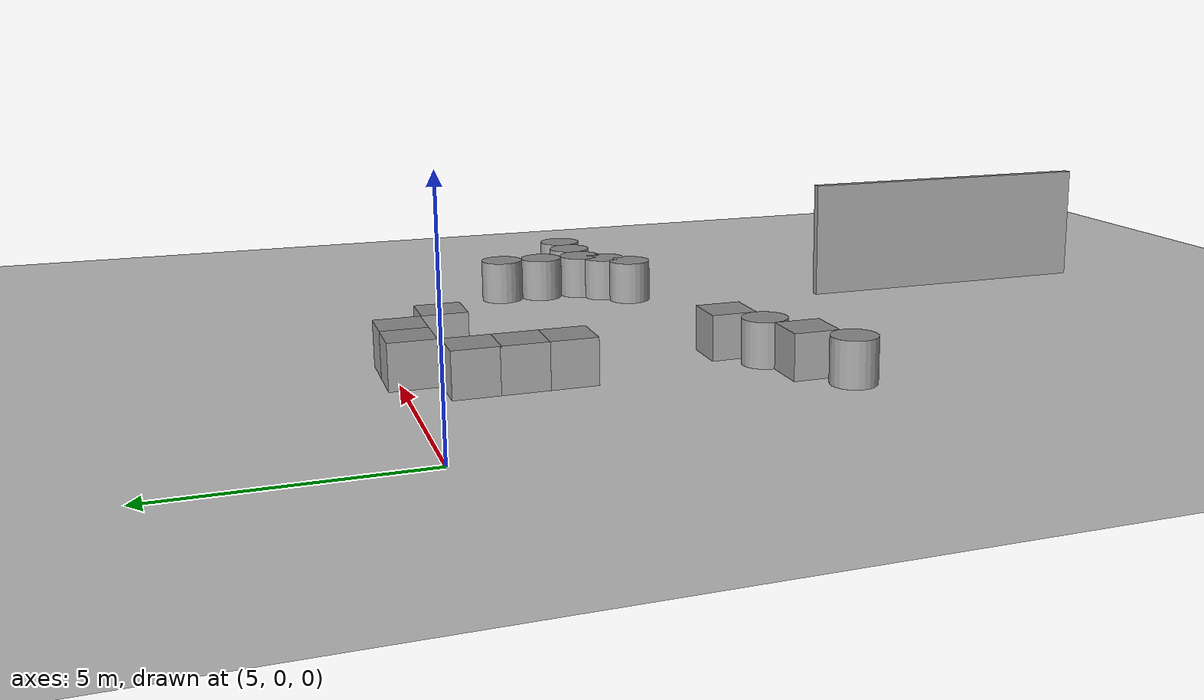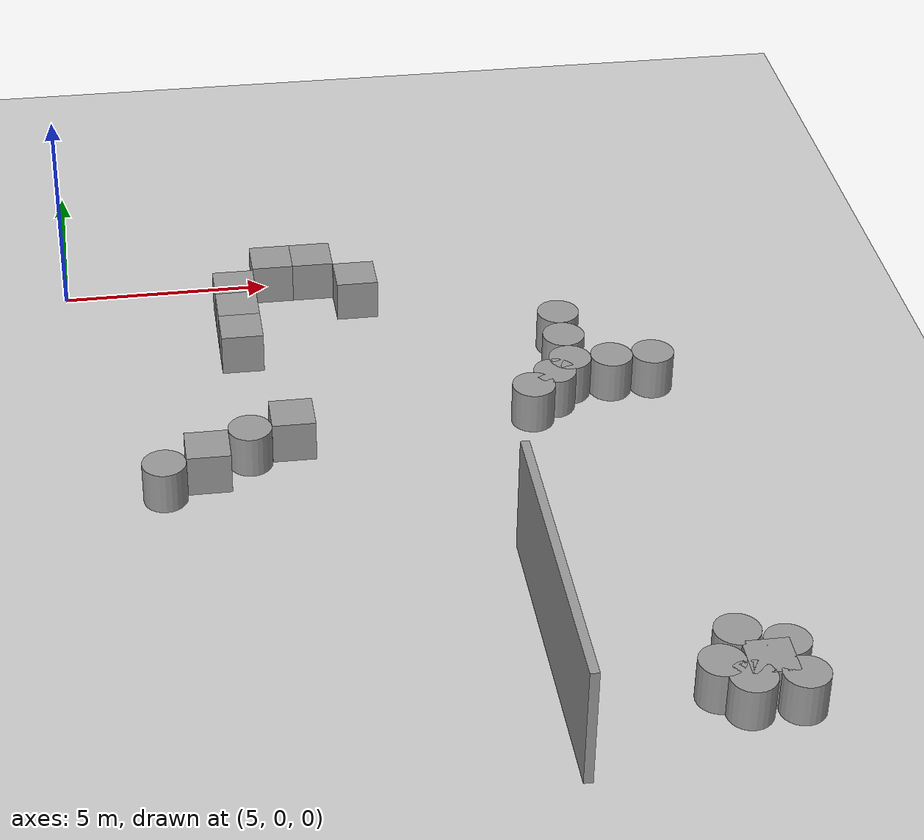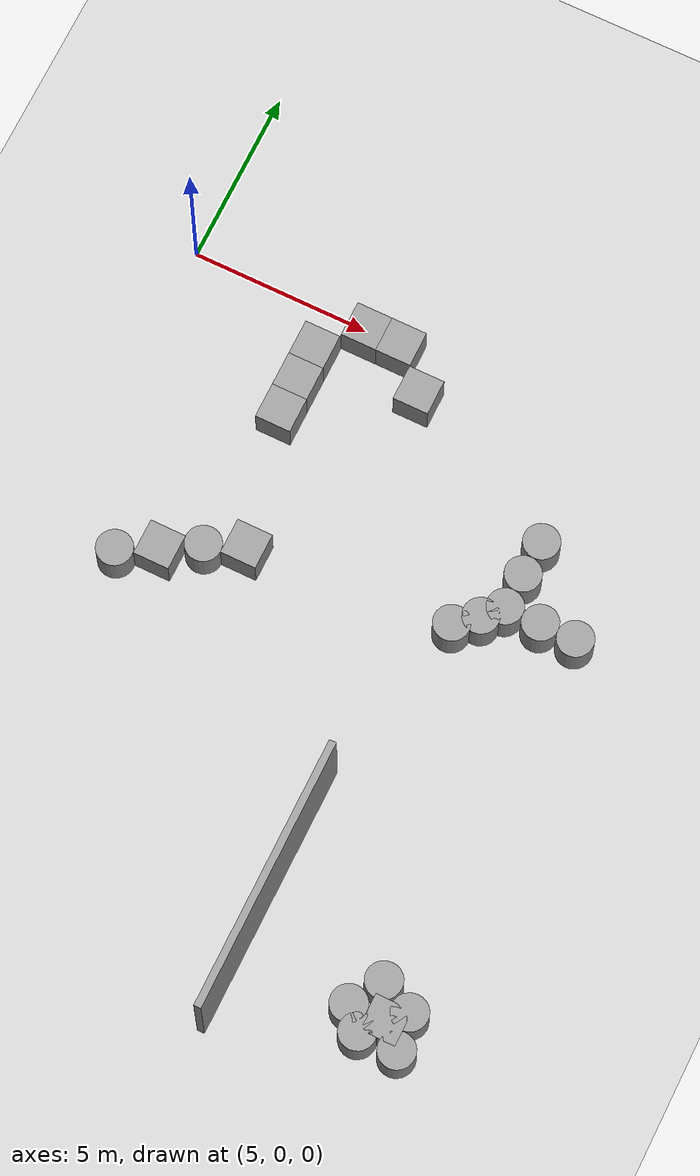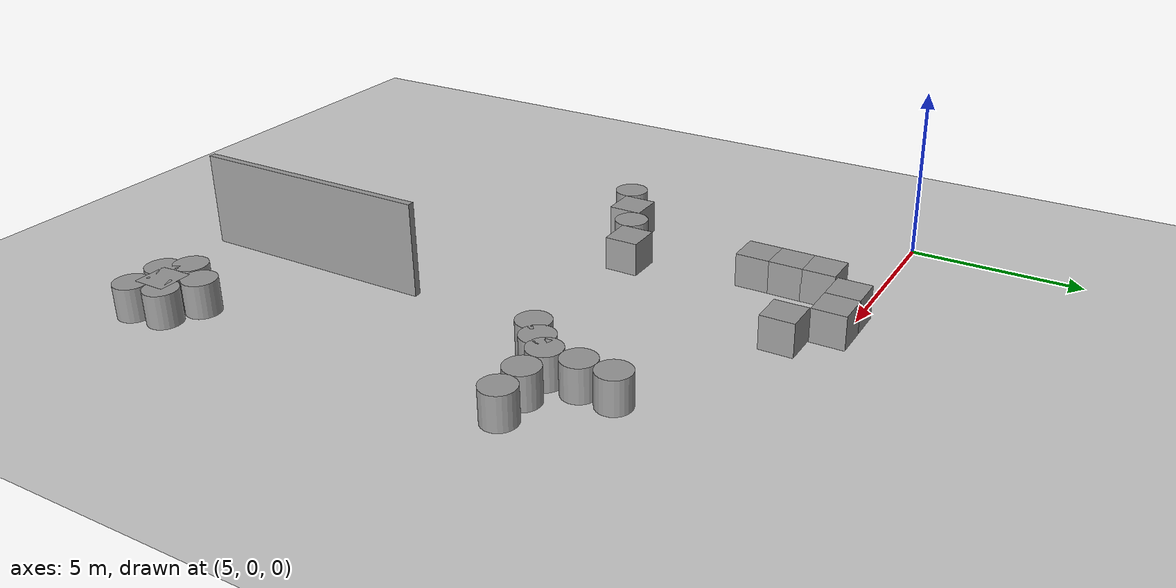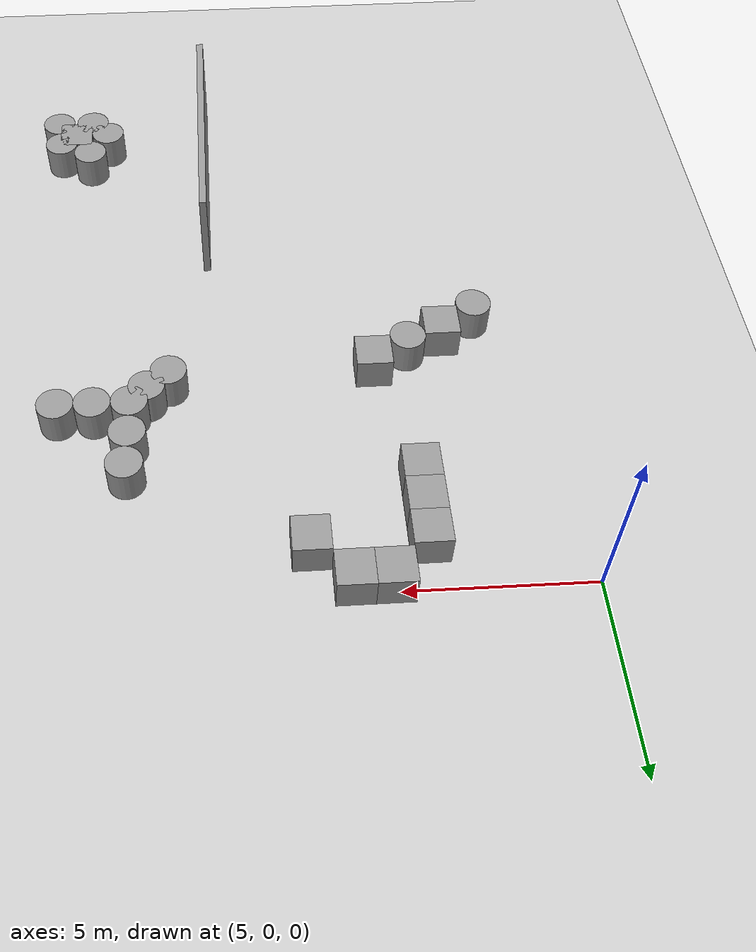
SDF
<sdf version="1.6">
 <world name="default">
  <model name="ground_plane">
   <static>1</static>
   <link name="link">
    <collision name="collision">
     <geometry><plane><normal>0 0 1</normal><size>100 100</size></plane></geometry>
     <surface><friction><ode><mu>100</mu><mu2>50</mu2></ode></friction></surface>
    </collision>
    <visual name="visual">
     <cast_shadows>0</cast_shadows>
     <geometry><plane><normal>0 0 1</normal><size>100 100</size></plane></geometry>
     <material>
      <script><uri>file://media/materials/scripts/gazebo.material</uri><name>Gazebo/Grey</name></script>
     </material>
    </visual>
   </link>
  </model>
  <model name="grey_wall_5_clone">
   <static>1</static>
   <link name="link">
    <pose>0 0 1.4 0 -0 0</pose>
    <collision name="collision"><geometry><box><size>7.5 0.2 2.8</size></box></geometry></collision>
    <visual name="visual">
     <cast_shadows>0</cast_shadows>
     <geometry><box><size>7.5 0.2 2.8</size></box></geometry>
     <material>
      <script>
       <uri>model://grey_wall/materials/scripts</uri>
       <uri>model://grey_wall/materials/textures</uri>
       <name>vrc/grey_wall</name>
      </script>
     </material>
    </visual>
   </link>
   <pose>14.5686 -15.0042 0 0 -0 1.5708</pose>
  </model>
  <model name="machine6">
   <link name="link_32">
    <pose>-0.5 -0.233197 0 0 -0 0</pose>
    <inertial>
     <mass>1</mass>
     <inertia>
      <ixx>0.166667</ixx>
      <ixy>0</ixy>
      <ixz>0</ixz>
      <iyy>0.166667</iyy>
      <iyz>0</iyz>
      <izz>0.166667</izz>
     </inertia>
    </inertial>
    <visual name="visual">
     <geometry><box><size>1 1 1</size></box></geometry>
     <material>
      <lighting>1</lighting>
      <script><uri>file://media/materials/scripts/gazebo.material</uri><name>Gazebo/Grey</name></script>
      <ambient>0.3 0.3 0.3 1</ambient>
      <diffuse>0.7 0.7 0.7 1</diffuse>
      <specular>0.01 0.01 0.01 1</specular>
      <emissive>0 0 0 1</emissive>
     </material>
    </visual>
    <collision name="collision">
     <geometry><box><size>1 1 1</size></box></geometry>
     <surface>
      <friction>
       <ode><mu>1</mu><mu2>1</mu2><fdir1>0 0 0</fdir1><slip1>0</slip1><slip2>0</slip2></ode>
       <torsional>
        <coefficient>1</coefficient>
        <patch_radius>0</patch_radius>
        <surface_radius>0</surface_radius>
        <use_patch_radius>1</use_patch_radius>
        <ode><slip>0</slip></ode>
       </torsional>
      </friction>
      <bounce><restitution_coefficient>0</restitution_coefficient><threshold>1e+06</threshold></bounce>
      <contact>
       <collide_without_contact>0</collide_without_contact>
       <collide_without_contact_bitmask>1</collide_without_contact_bitmask>
       <collide_bitmask>1</collide_bitmask>
       <ode>
        <soft_cfm>0</soft_cfm>
        <soft_erp>0.2</soft_erp>
        <kp>1e+13</kp>
        <kd>1</kd>
        <max_vel>0.01</max_vel>
        <min_depth>0</min_depth>
       </ode>
       <bullet>
        <split_impulse>1</split_impulse>
        <split_impulse_penetration_threshold>-0.01</split_impulse_penetration_threshold>
        <soft_cfm>0</soft_cfm>
        <soft_erp>0.2</soft_erp>
        <kp>1e+13</kp>
        <kd>1</kd>
       </bullet>
      </contact>
     </surface>
    </collision>
   </link>
   <link name="link_33">
    <pose>0.5 0.283618 0 0 -0 0</pose>
    <inertial>
     <mass>1</mass>
     <inertia><ixx>0.145833</ixx><ixy>0</ixy><ixz>0</ixz><iyy>0.145833</iyy><iyz>0</iyz><izz>0.125</izz></inertia>
    </inertial>
    <visual name="visual">
     <geometry><cylinder><radius>0.5</radius><length>1</length></cylinder></geometry>
     <material>
      <lighting>1</lighting>
      <script><uri>file://media/materials/scripts/gazebo.material</uri><name>Gazebo/Grey</name></script>
      <ambient>0.3 0.3 0.3 1</ambient>
      <diffuse>0.7 0.7 0.7 1</diffuse>
      <specular>0.01 0.01 0.01 1</specular>
      <emissive>0 0 0 1</emissive>
     </material>
    </visual>
    <collision name="collision">
     <geometry><cylinder><radius>0.5</radius><length>1</length></cylinder></geometry>
     <surface>
      <friction>
       <ode><mu>1</mu><mu2>1</mu2><fdir1>0 0 0</fdir1><slip1>0</slip1><slip2>0</slip2></ode>
       <torsional>
        <coefficient>1</coefficient>
        <patch_radius>0</patch_radius>
        <surface_radius>0</surface_radius>
        <use_patch_radius>1</use_patch_radius>
        <ode><slip>0</slip></ode>
       </torsional>
      </friction>
      <bounce><restitution_coefficient>0</restitution_coefficient><threshold>1e+06</threshold></bounce>
      <contact>
       <collide_without_contact>0</collide_without_contact>
       <collide_without_contact_bitmask>1</collide_without_contact_bitmask>
       <collide_bitmask>1</collide_bitmask>
       <ode>
        <soft_cfm>0</soft_cfm>
        <soft_erp>0.2</soft_erp>
        <kp>1e+13</kp>
        <kd>1</kd>
        <max_vel>0.01</max_vel>
        <min_depth>0</min_depth>
       </ode>
       <bullet>
        <split_impulse>1</split_impulse>
        <split_impulse_penetration_threshold>-0.01</split_impulse_penetration_threshold>
        <soft_cfm>0</soft_cfm>
        <soft_erp>0.2</soft_erp>
        <kp>1e+13</kp>
        <kd>1</kd>
       </bullet>
      </contact>
     </surface>
    </collision>
   </link>
   <link name="link_34">
    <pose>-1.5 -0.817224 0 0 -0 0</pose>
    <inertial>
     <mass>1</mass>
     <inertia><ixx>0.145833</ixx><ixy>0</ixy><ixz>0</ixz><iyy>0.145833</iyy><iyz>0</iyz><izz>0.125</izz></inertia>
    </inertial>
    <visual name="visual">
     <geometry><cylinder><radius>0.5</radius><length>1</length></cylinder></geometry>
     <material>
      <lighting>1</lighting>
      <script><uri>file://media/materials/scripts/gazebo.material</uri><name>Gazebo/Grey</name></script>
      <ambient>0.3 0.3 0.3 1</ambient>
      <diffuse>0.7 0.7 0.7 1</diffuse>
      <specular>0.01 0.01 0.01 1</specular>
      <emissive>0 0 0 1</emissive>
     </material>
    </visual>
    <collision name="collision">
     <geometry><cylinder><radius>0.5</radius><length>1</length></cylinder></geometry>
     <surface>
      <friction>
       <ode><mu>1</mu><mu2>1</mu2><fdir1>0 0 0</fdir1><slip1>0</slip1><slip2>0</slip2></ode>
       <torsional>
        <coefficient>1</coefficient>
        <patch_radius>0</patch_radius>
        <surface_radius>0</surface_radius>
        <use_patch_radius>1</use_patch_radius>
        <ode><slip>0</slip></ode>
       </torsional>
      </friction>
      <bounce><restitution_coefficient>0</restitution_coefficient><threshold>1e+06</threshold></bounce>
      <contact>
       <collide_without_contact>0</collide_without_contact>
       <collide_without_contact_bitmask>1</collide_without_contact_bitmask>
       <collide_bitmask>1</collide_bitmask>
       <ode>
        <soft_cfm>0</soft_cfm>
        <soft_erp>0.2</soft_erp>
        <kp>1e+13</kp>
        <kd>1</kd>
        <max_vel>0.01</max_vel>
        <min_depth>0</min_depth>
       </ode>
       <bullet>
        <split_impulse>1</split_impulse>
        <split_impulse_penetration_threshold>-0.01</split_impulse_penetration_threshold>
        <soft_cfm>0</soft_cfm>
        <soft_erp>0.2</soft_erp>
        <kp>1e+13</kp>
        <kd>1</kd>
       </bullet>
      </contact>
     </surface>
    </collision>
   </link>
   <link name="link_35">
    <pose>1.5 0.766803 0 0 -0 0</pose>
    <inertial>
     <mass>1</mass>
     <inertia>
      <ixx>0.166667</ixx>
      <ixy>0</ixy>
      <ixz>0</ixz>
      <iyy>0.166667</iyy>
      <iyz>0</iyz>
      <izz>0.166667</izz>
     </inertia>
    </inertial>
    <visual name="visual">
     <geometry><box><size>1 1 1</size></box></geometry>
     <material>
      <lighting>1</lighting>
      <script><uri>file://media/materials/scripts/gazebo.material</uri><name>Gazebo/Grey</name></script>
      <ambient>0.3 0.3 0.3 1</ambient>
      <diffuse>0.7 0.7 0.7 1</diffuse>
      <specular>0.01 0.01 0.01 1</specular>
      <emissive>0 0 0 1</emissive>
     </material>
    </visual>
    <collision name="collision">
     <geometry><box><size>1 1 1</size></box></geometry>
     <surface>
      <friction>
       <ode><mu>1</mu><mu2>1</mu2><fdir1>0 0 0</fdir1><slip1>0</slip1><slip2>0</slip2></ode>
       <torsional>
        <coefficient>1</coefficient>
        <patch_radius>0</patch_radius>
        <surface_radius>0</surface_radius>
        <use_patch_radius>1</use_patch_radius>
        <ode><slip>0</slip></ode>
       </torsional>
      </friction>
      <bounce><restitution_coefficient>0</restitution_coefficient><threshold>1e+06</threshold></bounce>
      <contact>
       <collide_without_contact>0</collide_without_contact>
       <collide_without_contact_bitmask>1</collide_without_contact_bitmask>
       <collide_bitmask>1</collide_bitmask>
       <ode>
        <soft_cfm>0</soft_cfm>
        <soft_erp>0.2</soft_erp>
        <kp>1e+13</kp>
        <kd>1</kd>
        <max_vel>0.01</max_vel>
        <min_depth>0</min_depth>
       </ode>
       <bullet>
        <split_impulse>1</split_impulse>
        <split_impulse_penetration_threshold>-0.01</split_impulse_penetration_threshold>
        <soft_cfm>0</soft_cfm>
        <soft_erp>0.2</soft_erp>
        <kp>1e+13</kp>
        <kd>1</kd>
       </bullet>
      </contact>
     </surface>
    </collision>
   </link>
   <static>0</static>
   <pose>8.5 -7.7668 0.5 0 -0 0</pose>
  </model>
  <model name="machine2_clone_0_clone">
   <link name="link_6">
    <pose>0.153167 -0.028269 0 0 -0 0</pose>
    <inertial>
     <mass>1</mass>
     <inertia>
      <ixx>0.166667</ixx>
      <ixy>0</ixy>
      <ixz>0</ixz>
      <iyy>0.166667</iyy>
      <iyz>0</iyz>
      <izz>0.166667</izz>
     </inertia>
    </inertial>
    <visual name="visual">
     <geometry><box><size>1 1 1</size></box></geometry>
     <material>
      <lighting>1</lighting>
      <script><uri>file://media/materials/scripts/gazebo.material</uri><name>Gazebo/Grey</name></script>
      <ambient>0.3 0.3 0.3 1</ambient>
      <diffuse>0.7 0.7 0.7 1</diffuse>
      <specular>0.01 0.01 0.01 1</specular>
      <emissive>0 0 0 1</emissive>
     </material>
    </visual>
    <collision name="collision">
     <geometry><box><size>1 1 1</size></box></geometry>
     <surface>
      <friction>
       <ode><mu>1</mu><mu2>1</mu2><fdir1>0 0 0</fdir1><slip1>0</slip1><slip2>0</slip2></ode>
       <torsional>
        <coefficient>1</coefficient>
        <patch_radius>0</patch_radius>
        <surface_radius>0</surface_radius>
        <use_patch_radius>1</use_patch_radius>
        <ode><slip>0</slip></ode>
       </torsional>
      </friction>
      <bounce><restitution_coefficient>0</restitution_coefficient><threshold>1e+06</threshold></bounce>
      <contact>
       <collide_without_contact>0</collide_without_contact>
       <collide_without_contact_bitmask>1</collide_without_contact_bitmask>
       <collide_bitmask>1</collide_bitmask>
       <ode>
        <soft_cfm>0</soft_cfm>
        <soft_erp>0.2</soft_erp>
        <kp>1e+13</kp>
        <kd>1</kd>
        <max_vel>0.01</max_vel>
        <min_depth>0</min_depth>
       </ode>
       <bullet>
        <split_impulse>1</split_impulse>
        <split_impulse_penetration_threshold>-0.01</split_impulse_penetration_threshold>
        <soft_cfm>0</soft_cfm>
        <soft_erp>0.2</soft_erp>
        <kp>1e+13</kp>
        <kd>1</kd>
       </bullet>
      </contact>
     </surface>
    </collision>
   </link>
   <link name="link_10">
    <pose>0.61205 0.404825 0 0 -0 0</pose>
    <inertial>
     <mass>1</mass>
     <inertia><ixx>0.145833</ixx><ixy>0</ixy><ixz>0</ixz><iyy>0.145833</iyy><iyz>0</iyz><izz>0.125</izz></inertia>
    </inertial>
    <visual name="visual">
     <geometry><cylinder><radius>0.5</radius><length>1</length></cylinder></geometry>
     <material>
      <lighting>1</lighting>
      <script><uri>file://media/materials/scripts/gazebo.material</uri><name>Gazebo/Grey</name></script>
      <ambient>0.3 0.3 0.3 1</ambient>
      <diffuse>0.7 0.7 0.7 1</diffuse>
      <specular>0.01 0.01 0.01 1</specular>
      <emissive>0 0 0 1</emissive>
     </material>
    </visual>
    <collision name="collision">
     <geometry><cylinder><radius>0.5</radius><length>1</length></cylinder></geometry>
     <surface>
      <friction>
       <ode><mu>1</mu><mu2>1</mu2><fdir1>0 0 0</fdir1><slip1>0</slip1><slip2>0</slip2></ode>
       <torsional>
        <coefficient>1</coefficient>
        <patch_radius>0</patch_radius>
        <surface_radius>0</surface_radius>
        <use_patch_radius>1</use_patch_radius>
        <ode><slip>0</slip></ode>
       </torsional>
      </friction>
      <bounce><restitution_coefficient>0</restitution_coefficient><threshold>1e+06</threshold></bounce>
      <contact>
       <collide_without_contact>0</collide_without_contact>
       <collide_without_contact_bitmask>1</collide_without_contact_bitmask>
       <collide_bitmask>1</collide_bitmask>
       <ode>
        <soft_cfm>0</soft_cfm>
        <soft_erp>0.2</soft_erp>
        <kp>1e+13</kp>
        <kd>1</kd>
        <max_vel>0.01</max_vel>
        <min_depth>0</min_depth>
       </ode>
       <bullet>
        <split_impulse>1</split_impulse>
        <split_impulse_penetration_threshold>-0.01</split_impulse_penetration_threshold>
        <soft_cfm>0</soft_cfm>
        <soft_erp>0.2</soft_erp>
        <kp>1e+13</kp>
        <kd>1</kd>
       </bullet>
      </contact>
     </surface>
    </collision>
   </link>
   <link name="link_11">
    <pose>0.739497 -0.595175 0 0 -0 0</pose>
    <inertial>
     <mass>1</mass>
     <inertia><ixx>0.145833</ixx><ixy>0</ixy><ixz>0</ixz><iyy>0.145833</iyy><iyz>0</iyz><izz>0.125</izz></inertia>
    </inertial>
    <visual name="visual">
     <geometry><cylinder><radius>0.5</radius><length>1</length></cylinder></geometry>
     <material>
      <lighting>1</lighting>
      <script><uri>file://media/materials/scripts/gazebo.material</uri><name>Gazebo/Grey</name></script>
      <ambient>0.3 0.3 0.3 1</ambient>
      <diffuse>0.7 0.7 0.7 1</diffuse>
      <specular>0.01 0.01 0.01 1</specular>
      <emissive>0 0 0 1</emissive>
     </material>
    </visual>
    <collision name="collision">
     <geometry><cylinder><radius>0.5</radius><length>1</length></cylinder></geometry>
     <surface>
      <friction>
       <ode><mu>1</mu><mu2>1</mu2><fdir1>0 0 0</fdir1><slip1>0</slip1><slip2>0</slip2></ode>
       <torsional>
        <coefficient>1</coefficient>
        <patch_radius>0</patch_radius>
        <surface_radius>0</surface_radius>
        <use_patch_radius>1</use_patch_radius>
        <ode><slip>0</slip></ode>
       </torsional>
      </friction>
      <bounce><restitution_coefficient>0</restitution_coefficient><threshold>1e+06</threshold></bounce>
      <contact>
       <collide_without_contact>0</collide_without_contact>
       <collide_without_contact_bitmask>1</collide_without_contact_bitmask>
       <collide_bitmask>1</collide_bitmask>
       <ode>
        <soft_cfm>0</soft_cfm>
        <soft_erp>0.2</soft_erp>
        <kp>1e+13</kp>
        <kd>1</kd>
        <max_vel>0.01</max_vel>
        <min_depth>0</min_depth>
       </ode>
       <bullet>
        <split_impulse>1</split_impulse>
        <split_impulse_penetration_threshold>-0.01</split_impulse_penetration_threshold>
        <soft_cfm>0</soft_cfm>
        <soft_erp>0.2</soft_erp>
        <kp>1e+13</kp>
        <kd>1</kd>
       </bullet>
      </contact>
     </surface>
    </collision>
   </link>
   <link name="link_12">
    <pose>-0.316153 0.858024 0 0 -0 0</pose>
    <inertial>
     <mass>1</mass>
     <inertia><ixx>0.145833</ixx><ixy>0</ixy><ixz>0</ixz><iyy>0.145833</iyy><iyz>0</iyz><izz>0.125</izz></inertia>
    </inertial>
    <visual name="visual">
     <geometry><cylinder><radius>0.5</radius><length>1</length></cylinder></geometry>
     <material>
      <lighting>1</lighting>
      <script><uri>file://media/materials/scripts/gazebo.material</uri><name>Gazebo/Grey</name></script>
      <ambient>0.3 0.3 0.3 1</ambient>
      <diffuse>0.7 0.7 0.7 1</diffuse>
      <specular>0.01 0.01 0.01 1</specular>
      <emissive>0 0 0 1</emissive>
     </material>
    </visual>
    <collision name="collision">
     <geometry><cylinder><radius>0.5</radius><length>1</length></cylinder></geometry>
     <surface>
      <friction>
       <ode><mu>1</mu><mu2>1</mu2><fdir1>0 0 0</fdir1><slip1>0</slip1><slip2>0</slip2></ode>
       <torsional>
        <coefficient>1</coefficient>
        <patch_radius>0</patch_radius>
        <surface_radius>0</surface_radius>
        <use_patch_radius>1</use_patch_radius>
        <ode><slip>0</slip></ode>
       </torsional>
      </friction>
      <bounce><restitution_coefficient>0</restitution_coefficient><threshold>1e+06</threshold></bounce>
      <contact>
       <collide_without_contact>0</collide_without_contact>
       <collide_without_contact_bitmask>1</collide_without_contact_bitmask>
       <collide_bitmask>1</collide_bitmask>
       <ode>
        <soft_cfm>0</soft_cfm>
        <soft_erp>0.2</soft_erp>
        <kp>1e+13</kp>
        <kd>1</kd>
        <max_vel>0.01</max_vel>
        <min_depth>0</min_depth>
       </ode>
       <bullet>
        <split_impulse>1</split_impulse>
        <split_impulse_penetration_threshold>-0.01</split_impulse_penetration_threshold>
        <soft_cfm>0</soft_cfm>
        <soft_erp>0.2</soft_erp>
        <kp>1e+13</kp>
        <kd>1</kd>
       </bullet>
      </contact>
     </surface>
    </collision>
   </link>
   <link name="link_8">
    <pose>-0.846833 -0.044231 0 0 -0 0</pose>
    <inertial>
     <mass>1</mass>
     <inertia><ixx>0.145833</ixx><ixy>0</ixy><ixz>0</ixz><iyy>0.145833</iyy><iyz>0</iyz><izz>0.125</izz></inertia>
    </inertial>
    <visual name="visual">
     <geometry><cylinder><radius>0.5</radius><length>1</length></cylinder></geometry>
     <material>
      <lighting>1</lighting>
      <script><uri>file://media/materials/scripts/gazebo.material</uri><name>Gazebo/Grey</name></script>
      <ambient>0.3 0.3 0.3 1</ambient>
      <diffuse>0.7 0.7 0.7 1</diffuse>
      <specular>0.01 0.01 0.01 1</specular>
      <emissive>0 0 0 1</emissive>
     </material>
    </visual>
    <collision name="collision">
     <geometry><cylinder><radius>0.5</radius><length>1</length></cylinder></geometry>
     <surface>
      <friction>
       <ode><mu>1</mu><mu2>1</mu2><fdir1>0 0 0</fdir1><slip1>0</slip1><slip2>0</slip2></ode>
       <torsional>
        <coefficient>1</coefficient>
        <patch_radius>0</patch_radius>
        <surface_radius>0</surface_radius>
        <use_patch_radius>1</use_patch_radius>
        <ode><slip>0</slip></ode>
       </torsional>
      </friction>
      <bounce><restitution_coefficient>0</restitution_coefficient><threshold>1e+06</threshold></bounce>
      <contact>
       <collide_without_contact>0</collide_without_contact>
       <collide_without_contact_bitmask>1</collide_without_contact_bitmask>
       <collide_bitmask>1</collide_bitmask>
       <ode>
        <soft_cfm>0</soft_cfm>
        <soft_erp>0.2</soft_erp>
        <kp>1e+13</kp>
        <kd>1</kd>
        <max_vel>0.01</max_vel>
        <min_depth>0</min_depth>
       </ode>
       <bullet>
        <split_impulse>1</split_impulse>
        <split_impulse_penetration_threshold>-0.01</split_impulse_penetration_threshold>
        <soft_cfm>0</soft_cfm>
        <soft_erp>0.2</soft_erp>
        <kp>1e+13</kp>
        <kd>1</kd>
       </bullet>
      </contact>
     </surface>
    </collision>
   </link>
   <link name="link_9">
    <pose>-0.34172 -0.595175 0 0 -0 0</pose>
    <inertial>
     <mass>1</mass>
     <inertia><ixx>0.145833</ixx><ixy>0</ixy><ixz>0</ixz><iyy>0.145833</iyy><iyz>0</iyz><izz>0.125</izz></inertia>
    </inertial>
    <visual name="visual">
     <geometry><cylinder><radius>0.5</radius><length>1</length></cylinder></geometry>
     <material>
      <lighting>1</lighting>
      <script><uri>file://media/materials/scripts/gazebo.material</uri><name>Gazebo/Grey</name></script>
      <ambient>0.3 0.3 0.3 1</ambient>
      <diffuse>0.7 0.7 0.7 1</diffuse>
      <specular>0.01 0.01 0.01 1</specular>
      <emissive>0 0 0 1</emissive>
     </material>
    </visual>
    <collision name="collision">
     <geometry><cylinder><radius>0.5</radius><length>1</length></cylinder></geometry>
     <surface>
      <friction>
       <ode><mu>1</mu><mu2>1</mu2><fdir1>0 0 0</fdir1><slip1>0</slip1><slip2>0</slip2></ode>
       <torsional>
        <coefficient>1</coefficient>
        <patch_radius>0</patch_radius>
        <surface_radius>0</surface_radius>
        <use_patch_radius>1</use_patch_radius>
        <ode><slip>0</slip></ode>
       </torsional>
      </friction>
      <bounce><restitution_coefficient>0</restitution_coefficient><threshold>1e+06</threshold></bounce>
      <contact>
       <collide_without_contact>0</collide_without_contact>
       <collide_without_contact_bitmask>1</collide_without_contact_bitmask>
       <collide_bitmask>1</collide_bitmask>
       <ode>
        <soft_cfm>0</soft_cfm>
        <soft_erp>0.2</soft_erp>
        <kp>1e+13</kp>
        <kd>1</kd>
        <max_vel>0.01</max_vel>
        <min_depth>0</min_depth>
       </ode>
       <bullet>
        <split_impulse>1</split_impulse>
        <split_impulse_penetration_threshold>-0.01</split_impulse_penetration_threshold>
        <soft_cfm>0</soft_cfm>
        <soft_erp>0.2</soft_erp>
        <kp>1e+13</kp>
        <kd>1</kd>
       </bullet>
      </contact>
     </surface>
    </collision>
   </link>
   <static>0</static>
   <pose>18.5048 -16.6302 0.5 0 -0 0</pose>
  </model>
  <model name="machin4_2">
   <link name="link_19">
    <pose>0.127295 1 0 0 -0 0</pose>
    <inertial>
     <mass>1</mass>
     <inertia>
      <ixx>0.166667</ixx>
      <ixy>0</ixy>
      <ixz>0</ixz>
      <iyy>0.166667</iyy>
      <iyz>0</iyz>
      <izz>0.166667</izz>
     </inertia>
    </inertial>
    <visual name="visual">
     <geometry><box><size>1 1 1</size></box></geometry>
     <material>
      <lighting>1</lighting>
      <script><uri>file://media/materials/scripts/gazebo.material</uri><name>Gazebo/Grey</name></script>
      <ambient>0.3 0.3 0.3 1</ambient>
      <diffuse>0.7 0.7 0.7 1</diffuse>
      <specular>0.01 0.01 0.01 1</specular>
      <emissive>0 0 0 1</emissive>
     </material>
    </visual>
    <collision name="collision">
     <geometry><box><size>1 1 1</size></box></geometry>
     <surface>
      <friction>
       <ode><mu>1</mu><mu2>1</mu2><fdir1>0 0 0</fdir1><slip1>0</slip1><slip2>0</slip2></ode>
       <torsional>
        <coefficient>1</coefficient>
        <patch_radius>0</patch_radius>
        <surface_radius>0</surface_radius>
        <use_patch_radius>1</use_patch_radius>
        <ode><slip>0</slip></ode>
       </torsional>
      </friction>
      <bounce><restitution_coefficient>0</restitution_coefficient><threshold>1e+06</threshold></bounce>
      <contact>
       <collide_without_contact>0</collide_without_contact>
       <collide_without_contact_bitmask>1</collide_without_contact_bitmask>
       <collide_bitmask>1</collide_bitmask>
       <ode>
        <soft_cfm>0</soft_cfm>
        <soft_erp>0.2</soft_erp>
        <kp>1e+13</kp>
        <kd>1</kd>
        <max_vel>0.01</max_vel>
        <min_depth>0</min_depth>
       </ode>
       <bullet>
        <split_impulse>1</split_impulse>
        <split_impulse_penetration_threshold>-0.01</split_impulse_penetration_threshold>
        <soft_cfm>0</soft_cfm>
        <soft_erp>0.2</soft_erp>
        <kp>1e+13</kp>
        <kd>1</kd>
       </bullet>
      </contact>
     </surface>
    </collision>
   </link>
   <link name="link_20">
    <pose>-0.843938 1 0 0 -0 0</pose>
    <inertial>
     <mass>1</mass>
     <inertia>
      <ixx>0.166667</ixx>
      <ixy>0</ixy>
      <ixz>0</ixz>
      <iyy>0.166667</iyy>
      <iyz>0</iyz>
      <izz>0.166667</izz>
     </inertia>
    </inertial>
    <visual name="visual">
     <geometry><box><size>1 1 1</size></box></geometry>
     <material>
      <lighting>1</lighting>
      <script><uri>file://media/materials/scripts/gazebo.material</uri><name>Gazebo/Grey</name></script>
      <ambient>0.3 0.3 0.3 1</ambient>
      <diffuse>0.7 0.7 0.7 1</diffuse>
      <specular>0.01 0.01 0.01 1</specular>
      <emissive>0 0 0 1</emissive>
     </material>
    </visual>
    <collision name="collision">
     <geometry><box><size>1 1 1</size></box></geometry>
     <surface>
      <friction>
       <ode><mu>1</mu><mu2>1</mu2><fdir1>0 0 0</fdir1><slip1>0</slip1><slip2>0</slip2></ode>
       <torsional>
        <coefficient>1</coefficient>
        <patch_radius>0</patch_radius>
        <surface_radius>0</surface_radius>
        <use_patch_radius>1</use_patch_radius>
        <ode><slip>0</slip></ode>
       </torsional>
      </friction>
      <bounce><restitution_coefficient>0</restitution_coefficient><threshold>1e+06</threshold></bounce>
      <contact>
       <collide_without_contact>0</collide_without_contact>
       <collide_without_contact_bitmask>1</collide_without_contact_bitmask>
       <collide_bitmask>1</collide_bitmask>
       <ode>
        <soft_cfm>0</soft_cfm>
        <soft_erp>0.2</soft_erp>
        <kp>1e+13</kp>
        <kd>1</kd>
        <max_vel>0.01</max_vel>
        <min_depth>0</min_depth>
       </ode>
       <bullet>
        <split_impulse>1</split_impulse>
        <split_impulse_penetration_threshold>-0.01</split_impulse_penetration_threshold>
        <soft_cfm>0</soft_cfm>
        <soft_erp>0.2</soft_erp>
        <kp>1e+13</kp>
        <kd>1</kd>
       </bullet>
      </contact>
     </surface>
    </collision>
   </link>
   <link name="link_21">
    <pose>1.19236 0 0 0 -0 0</pose>
    <inertial>
     <mass>1</mass>
     <inertia>
      <ixx>0.166667</ixx>
      <ixy>0</ixy>
      <ixz>0</ixz>
      <iyy>0.166667</iyy>
      <iyz>0</iyz>
      <izz>0.166667</izz>
     </inertia>
    </inertial>
    <visual name="visual">
     <geometry><box><size>1 1 1</size></box></geometry>
     <material>
      <lighting>1</lighting>
      <script><uri>file://media/materials/scripts/gazebo.material</uri><name>Gazebo/Grey</name></script>
      <ambient>0.3 0.3 0.3 1</ambient>
      <diffuse>0.7 0.7 0.7 1</diffuse>
      <specular>0.01 0.01 0.01 1</specular>
      <emissive>0 0 0 1</emissive>
     </material>
    </visual>
    <collision name="collision">
     <geometry><box><size>1 1 1</size></box></geometry>
     <surface>
      <friction>
       <ode><mu>1</mu><mu2>1</mu2><fdir1>0 0 0</fdir1><slip1>0</slip1><slip2>0</slip2></ode>
       <torsional>
        <coefficient>1</coefficient>
        <patch_radius>0</patch_radius>
        <surface_radius>0</surface_radius>
        <use_patch_radius>1</use_patch_radius>
        <ode><slip>0</slip></ode>
       </torsional>
      </friction>
      <bounce><restitution_coefficient>0</restitution_coefficient><threshold>1e+06</threshold></bounce>
      <contact>
       <collide_without_contact>0</collide_without_contact>
       <collide_without_contact_bitmask>1</collide_without_contact_bitmask>
       <collide_bitmask>1</collide_bitmask>
       <ode>
        <soft_cfm>0</soft_cfm>
        <soft_erp>0.2</soft_erp>
        <kp>1e+13</kp>
        <kd>1</kd>
        <max_vel>0.01</max_vel>
        <min_depth>0</min_depth>
       </ode>
       <bullet>
        <split_impulse>1</split_impulse>
        <split_impulse_penetration_threshold>-0.01</split_impulse_penetration_threshold>
        <soft_cfm>0</soft_cfm>
        <soft_erp>0.2</soft_erp>
        <kp>1e+13</kp>
        <kd>1</kd>
       </bullet>
      </contact>
     </surface>
    </collision>
   </link>
   <link name="link_22">
    <pose>1.19278 -1 0 0 -0 0</pose>
    <inertial>
     <mass>1</mass>
     <inertia>
      <ixx>0.166667</ixx>
      <ixy>0</ixy>
      <ixz>0</ixz>
      <iyy>0.166667</iyy>
      <iyz>0</iyz>
      <izz>0.166667</izz>
     </inertia>
    </inertial>
    <visual name="visual">
     <geometry><box><size>1 1 1</size></box></geometry>
     <material>
      <lighting>1</lighting>
      <script><uri>file://media/materials/scripts/gazebo.material</uri><name>Gazebo/Grey</name></script>
      <ambient>0.3 0.3 0.3 1</ambient>
      <diffuse>0.7 0.7 0.7 1</diffuse>
      <specular>0.01 0.01 0.01 1</specular>
      <emissive>0 0 0 1</emissive>
     </material>
    </visual>
    <collision name="collision">
     <geometry><box><size>1 1 1</size></box></geometry>
     <surface>
      <friction>
       <ode><mu>1</mu><mu2>1</mu2><fdir1>0 0 0</fdir1><slip1>0</slip1><slip2>0</slip2></ode>
       <torsional>
        <coefficient>1</coefficient>
        <patch_radius>0</patch_radius>
        <surface_radius>0</surface_radius>
        <use_patch_radius>1</use_patch_radius>
        <ode><slip>0</slip></ode>
       </torsional>
      </friction>
      <bounce><restitution_coefficient>0</restitution_coefficient><threshold>1e+06</threshold></bounce>
      <contact>
       <collide_without_contact>0</collide_without_contact>
       <collide_without_contact_bitmask>1</collide_without_contact_bitmask>
       <collide_bitmask>1</collide_bitmask>
       <ode>
        <soft_cfm>0</soft_cfm>
        <soft_erp>0.2</soft_erp>
        <kp>1e+13</kp>
        <kd>1</kd>
        <max_vel>0.01</max_vel>
        <min_depth>0</min_depth>
       </ode>
       <bullet>
        <split_impulse>1</split_impulse>
        <split_impulse_penetration_threshold>-0.01</split_impulse_penetration_threshold>
        <soft_cfm>0</soft_cfm>
        <soft_erp>0.2</soft_erp>
        <kp>1e+13</kp>
        <kd>1</kd>
       </bullet>
      </contact>
     </surface>
    </collision>
   </link>
   <link name="link_23">
    <pose>0.174071 -2 0 0 -0 0</pose>
    <inertial>
     <mass>1</mass>
     <inertia>
      <ixx>0.166667</ixx>
      <ixy>0</ixy>
      <ixz>0</ixz>
      <iyy>0.166667</iyy>
      <iyz>0</iyz>
      <izz>0.166667</izz>
     </inertia>
    </inertial>
    <visual name="visual">
     <geometry><box><size>1 1 1</size></box></geometry>
     <material>
      <lighting>1</lighting>
      <script><uri>file://media/materials/scripts/gazebo.material</uri><name>Gazebo/Grey</name></script>
      <ambient>0.3 0.3 0.3 1</ambient>
      <diffuse>0.7 0.7 0.7 1</diffuse>
      <specular>0.01 0.01 0.01 1</specular>
      <emissive>0 0 0 1</emissive>
     </material>
    </visual>
    <collision name="collision">
     <geometry><box><size>1 1 1</size></box></geometry>
     <surface>
      <friction>
       <ode><mu>1</mu><mu2>1</mu2><fdir1>0 0 0</fdir1><slip1>0</slip1><slip2>0</slip2></ode>
       <torsional>
        <coefficient>1</coefficient>
        <patch_radius>0</patch_radius>
        <surface_radius>0</surface_radius>
        <use_patch_radius>1</use_patch_radius>
        <ode><slip>0</slip></ode>
       </torsional>
      </friction>
      <bounce><restitution_coefficient>0</restitution_coefficient><threshold>1e+06</threshold></bounce>
      <contact>
       <collide_without_contact>0</collide_without_contact>
       <collide_without_contact_bitmask>1</collide_without_contact_bitmask>
       <collide_bitmask>1</collide_bitmask>
       <ode>
        <soft_cfm>0</soft_cfm>
        <soft_erp>0.2</soft_erp>
        <kp>1e+13</kp>
        <kd>1</kd>
        <max_vel>0.01</max_vel>
        <min_depth>0</min_depth>
       </ode>
       <bullet>
        <split_impulse>1</split_impulse>
        <split_impulse_penetration_threshold>-0.01</split_impulse_penetration_threshold>
        <soft_cfm>0</soft_cfm>
        <soft_erp>0.2</soft_erp>
        <kp>1e+13</kp>
        <kd>1</kd>
       </bullet>
      </contact>
     </surface>
    </collision>
   </link>
   <link name="link_24">
    <pose>-1.84258 1 0 0 -0 0</pose>
    <inertial>
     <mass>1</mass>
     <inertia>
      <ixx>0.166667</ixx>
      <ixy>0</ixy>
      <ixz>0</ixz>
      <iyy>0.166667</iyy>
      <iyz>0</iyz>
      <izz>0.166667</izz>
     </inertia>
    </inertial>
    <visual name="visual">
     <geometry><box><size>1 1 1</size></box></geometry>
     <material>
      <lighting>1</lighting>
      <script><uri>file://media/materials/scripts/gazebo.material</uri><name>Gazebo/Grey</name></script>
      <ambient>0.3 0.3 0.3 1</ambient>
      <diffuse>0.7 0.7 0.7 1</diffuse>
      <specular>0.01 0.01 0.01 1</specular>
      <emissive>0 0 0 1</emissive>
     </material>
    </visual>
    <collision name="collision">
     <geometry><box><size>1 1 1</size></box></geometry>
     <surface>
      <friction>
       <ode><mu>1</mu><mu2>1</mu2><fdir1>0 0 0</fdir1><slip1>0</slip1><slip2>0</slip2></ode>
       <torsional>
        <coefficient>1</coefficient>
        <patch_radius>0</patch_radius>
        <surface_radius>0</surface_radius>
        <use_patch_radius>1</use_patch_radius>
        <ode><slip>0</slip></ode>
       </torsional>
      </friction>
      <bounce><restitution_coefficient>0</restitution_coefficient><threshold>1e+06</threshold></bounce>
      <contact>
       <collide_without_contact>0</collide_without_contact>
       <collide_without_contact_bitmask>1</collide_without_contact_bitmask>
       <collide_bitmask>1</collide_bitmask>
       <ode>
        <soft_cfm>0</soft_cfm>
        <soft_erp>0.2</soft_erp>
        <kp>1e+13</kp>
        <kd>1</kd>
        <max_vel>0.01</max_vel>
        <min_depth>0</min_depth>
       </ode>
       <bullet>
        <split_impulse>1</split_impulse>
        <split_impulse_penetration_threshold>-0.01</split_impulse_penetration_threshold>
        <soft_cfm>0</soft_cfm>
        <soft_erp>0.2</soft_erp>
        <kp>1e+13</kp>
        <kd>1</kd>
       </bullet>
      </contact>
     </surface>
    </collision>
   </link>
   <static>0</static>
   <pose>10.1356 -1.40977 0.5 0 -0 1.571</pose>
  </model>
  <model name="machine5_1">
   <link name="link_25">
    <pose>1.75317 -0.214523 0 0 -0 0</pose>
    <inertial>
     <mass>1</mass>
     <inertia><ixx>0.145833</ixx><ixy>0</ixy><ixz>0</ixz><iyy>0.145833</iyy><iyz>0</iyz><izz>0.125</izz></inertia>
    </inertial>
    <visual name="visual">
     <geometry><cylinder><radius>0.5</radius><length>1</length></cylinder></geometry>
     <material>
      <lighting>1</lighting>
      <script><uri>file://media/materials/scripts/gazebo.material</uri><name>Gazebo/Grey</name></script>
      <ambient>0.3 0.3 0.3 1</ambient>
      <diffuse>0.7 0.7 0.7 1</diffuse>
      <specular>0.01 0.01 0.01 1</specular>
      <emissive>0 0 0 1</emissive>
     </material>
    </visual>
    <collision name="collision">
     <geometry><cylinder><radius>0.5</radius><length>1</length></cylinder></geometry>
     <surface>
      <friction>
       <ode><mu>1</mu><mu2>1</mu2><fdir1>0 0 0</fdir1><slip1>0</slip1><slip2>0</slip2></ode>
       <torsional>
        <coefficient>1</coefficient>
        <patch_radius>0</patch_radius>
        <surface_radius>0</surface_radius>
        <use_patch_radius>1</use_patch_radius>
        <ode><slip>0</slip></ode>
       </torsional>
      </friction>
      <bounce><restitution_coefficient>0</restitution_coefficient><threshold>1e+06</threshold></bounce>
      <contact>
       <collide_without_contact>0</collide_without_contact>
       <collide_without_contact_bitmask>1</collide_without_contact_bitmask>
       <collide_bitmask>1</collide_bitmask>
       <ode>
        <soft_cfm>0</soft_cfm>
        <soft_erp>0.2</soft_erp>
        <kp>1e+13</kp>
        <kd>1</kd>
        <max_vel>0.01</max_vel>
        <min_depth>0</min_depth>
       </ode>
       <bullet>
        <split_impulse>1</split_impulse>
        <split_impulse_penetration_threshold>-0.01</split_impulse_penetration_threshold>
        <soft_cfm>0</soft_cfm>
        <soft_erp>0.2</soft_erp>
        <kp>1e+13</kp>
        <kd>1</kd>
       </bullet>
      </contact>
     </surface>
    </collision>
   </link>
   <link name="link_26">
    <pose>0.765019 -0.214523 0 0 -0 0</pose>
    <inertial>
     <mass>1</mass>
     <inertia><ixx>0.145833</ixx><ixy>0</ixy><ixz>0</ixz><iyy>0.145833</iyy><iyz>0</iyz><izz>0.125</izz></inertia>
    </inertial>
    <visual name="visual">
     <geometry><cylinder><radius>0.5</radius><length>1</length></cylinder></geometry>
     <material>
      <lighting>1</lighting>
      <script><uri>file://media/materials/scripts/gazebo.material</uri><name>Gazebo/Grey</name></script>
      <ambient>0.3 0.3 0.3 1</ambient>
      <diffuse>0.7 0.7 0.7 1</diffuse>
      <specular>0.01 0.01 0.01 1</specular>
      <emissive>0 0 0 1</emissive>
     </material>
    </visual>
    <collision name="collision">
     <geometry><cylinder><radius>0.5</radius><length>1</length></cylinder></geometry>
     <surface>
      <friction>
       <ode><mu>1</mu><mu2>1</mu2><fdir1>0 0 0</fdir1><slip1>0</slip1><slip2>0</slip2></ode>
       <torsional>
        <coefficient>1</coefficient>
        <patch_radius>0</patch_radius>
        <surface_radius>0</surface_radius>
        <use_patch_radius>1</use_patch_radius>
        <ode><slip>0</slip></ode>
       </torsional>
      </friction>
      <bounce><restitution_coefficient>0</restitution_coefficient><threshold>1e+06</threshold></bounce>
      <contact>
       <collide_without_contact>0</collide_without_contact>
       <collide_without_contact_bitmask>1</collide_without_contact_bitmask>
       <collide_bitmask>1</collide_bitmask>
       <ode>
        <soft_cfm>0</soft_cfm>
        <soft_erp>0.2</soft_erp>
        <kp>1e+13</kp>
        <kd>1</kd>
        <max_vel>0.01</max_vel>
        <min_depth>0</min_depth>
       </ode>
       <bullet>
        <split_impulse>1</split_impulse>
        <split_impulse_penetration_threshold>-0.01</split_impulse_penetration_threshold>
        <soft_cfm>0</soft_cfm>
        <soft_erp>0.2</soft_erp>
        <kp>1e+13</kp>
        <kd>1</kd>
       </bullet>
      </contact>
     </surface>
    </collision>
   </link>
   <link name="link_27">
    <pose>-0.229545 -0.214523 0 0 -0 0</pose>
    <inertial>
     <mass>1</mass>
     <inertia><ixx>0.145833</ixx><ixy>0</ixy><ixz>0</ixz><iyy>0.145833</iyy><iyz>0</iyz><izz>0.125</izz></inertia>
    </inertial>
    <visual name="visual">
     <geometry><cylinder><radius>0.5</radius><length>1</length></cylinder></geometry>
     <material>
      <lighting>1</lighting>
      <script><uri>file://media/materials/scripts/gazebo.material</uri><name>Gazebo/Grey</name></script>
      <ambient>0.3 0.3 0.3 1</ambient>
      <diffuse>0.7 0.7 0.7 1</diffuse>
      <specular>0.01 0.01 0.01 1</specular>
      <emissive>0 0 0 1</emissive>
     </material>
    </visual>
    <collision name="collision">
     <geometry><cylinder><radius>0.5</radius><length>1</length></cylinder></geometry>
     <surface>
      <friction>
       <ode><mu>1</mu><mu2>1</mu2><fdir1>0 0 0</fdir1><slip1>0</slip1><slip2>0</slip2></ode>
       <torsional>
        <coefficient>1</coefficient>
        <patch_radius>0</patch_radius>
        <surface_radius>0</surface_radius>
        <use_patch_radius>1</use_patch_radius>
        <ode><slip>0</slip></ode>
       </torsional>
      </friction>
      <bounce><restitution_coefficient>0</restitution_coefficient><threshold>1e+06</threshold></bounce>
      <contact>
       <collide_without_contact>0</collide_without_contact>
       <collide_without_contact_bitmask>1</collide_without_contact_bitmask>
       <collide_bitmask>1</collide_bitmask>
       <ode>
        <soft_cfm>0</soft_cfm>
        <soft_erp>0.2</soft_erp>
        <kp>1e+13</kp>
        <kd>1</kd>
        <max_vel>0.01</max_vel>
        <min_depth>0</min_depth>
       </ode>
       <bullet>
        <split_impulse>1</split_impulse>
        <split_impulse_penetration_threshold>-0.01</split_impulse_penetration_threshold>
        <soft_cfm>0</soft_cfm>
        <soft_erp>0.2</soft_erp>
        <kp>1e+13</kp>
        <kd>1</kd>
       </bullet>
      </contact>
     </surface>
    </collision>
   </link>
   <link name="link_28">
    <pose>-0.194579 0.785477 0 0 -0 0</pose>
    <inertial>
     <mass>1</mass>
     <inertia><ixx>0.145833</ixx><ixy>0</ixy><ixz>0</ixz><iyy>0.145833</iyy><iyz>0</iyz><izz>0.125</izz></inertia>
    </inertial>
    <visual name="visual">
     <geometry><cylinder><radius>0.5</radius><length>1</length></cylinder></geometry>
     <material>
      <lighting>1</lighting>
      <script><uri>file://media/materials/scripts/gazebo.material</uri><name>Gazebo/Grey</name></script>
      <ambient>0.3 0.3 0.3 1</ambient>
      <diffuse>0.7 0.7 0.7 1</diffuse>
      <specular>0.01 0.01 0.01 1</specular>
      <emissive>0 0 0 1</emissive>
     </material>
    </visual>
    <collision name="collision">
     <geometry><cylinder><radius>0.5</radius><length>1</length></cylinder></geometry>
     <surface>
      <friction>
       <ode><mu>1</mu><mu2>1</mu2><fdir1>0 0 0</fdir1><slip1>0</slip1><slip2>0</slip2></ode>
       <torsional>
        <coefficient>1</coefficient>
        <patch_radius>0</patch_radius>
        <surface_radius>0</surface_radius>
        <use_patch_radius>1</use_patch_radius>
        <ode><slip>0</slip></ode>
       </torsional>
      </friction>
      <bounce><restitution_coefficient>0</restitution_coefficient><threshold>1e+06</threshold></bounce>
      <contact>
       <collide_without_contact>0</collide_without_contact>
       <collide_without_contact_bitmask>1</collide_without_contact_bitmask>
       <collide_bitmask>1</collide_bitmask>
       <ode>
        <soft_cfm>0</soft_cfm>
        <soft_erp>0.2</soft_erp>
        <kp>1e+13</kp>
        <kd>1</kd>
        <max_vel>0.01</max_vel>
        <min_depth>0</min_depth>
       </ode>
       <bullet>
        <split_impulse>1</split_impulse>
        <split_impulse_penetration_threshold>-0.01</split_impulse_penetration_threshold>
        <soft_cfm>0</soft_cfm>
        <soft_erp>0.2</soft_erp>
        <kp>1e+13</kp>
        <kd>1</kd>
       </bullet>
      </contact>
     </surface>
    </collision>
   </link>
   <link name="link_29">
    <pose>-0.141509 1.78548 0 0 -0 0</pose>
    <inertial>
     <mass>1</mass>
     <inertia><ixx>0.145833</ixx><ixy>0</ixy><ixz>0</ixz><iyy>0.145833</iyy><iyz>0</iyz><izz>0.125</izz></inertia>
    </inertial>
    <visual name="visual">
     <geometry><cylinder><radius>0.5</radius><length>1</length></cylinder></geometry>
     <material>
      <lighting>1</lighting>
      <script><uri>file://media/materials/scripts/gazebo.material</uri><name>Gazebo/Grey</name></script>
      <ambient>0.3 0.3 0.3 1</ambient>
      <diffuse>0.7 0.7 0.7 1</diffuse>
      <specular>0.01 0.01 0.01 1</specular>
      <emissive>0 0 0 1</emissive>
     </material>
    </visual>
    <collision name="collision">
     <geometry><cylinder><radius>0.5</radius><length>1</length></cylinder></geometry>
     <surface>
      <friction>
       <ode><mu>1</mu><mu2>1</mu2><fdir1>0 0 0</fdir1><slip1>0</slip1><slip2>0</slip2></ode>
       <torsional>
        <coefficient>1</coefficient>
        <patch_radius>0</patch_radius>
        <surface_radius>0</surface_radius>
        <use_patch_radius>1</use_patch_radius>
        <ode><slip>0</slip></ode>
       </torsional>
      </friction>
      <bounce><restitution_coefficient>0</restitution_coefficient><threshold>1e+06</threshold></bounce>
      <contact>
       <collide_without_contact>0</collide_without_contact>
       <collide_without_contact_bitmask>1</collide_without_contact_bitmask>
       <collide_bitmask>1</collide_bitmask>
       <ode>
        <soft_cfm>0</soft_cfm>
        <soft_erp>0.2</soft_erp>
        <kp>1e+13</kp>
        <kd>1</kd>
        <max_vel>0.01</max_vel>
        <min_depth>0</min_depth>
       </ode>
       <bullet>
        <split_impulse>1</split_impulse>
        <split_impulse_penetration_threshold>-0.01</split_impulse_penetration_threshold>
        <soft_cfm>0</soft_cfm>
        <soft_erp>0.2</soft_erp>
        <kp>1e+13</kp>
        <kd>1</kd>
       </bullet>
      </contact>
     </surface>
    </collision>
   </link>
   <link name="link_30">
    <pose>-0.682121 -0.712863 0 0 -0 0</pose>
    <inertial>
     <mass>1</mass>
     <inertia><ixx>0.145833</ixx><ixy>0</ixy><ixz>0</ixz><iyy>0.145833</iyy><iyz>0</iyz><izz>0.125</izz></inertia>
    </inertial>
    <visual name="visual">
     <geometry><cylinder><radius>0.5</radius><length>1</length></cylinder></geometry>
     <material>
      <lighting>1</lighting>
      <script><uri>file://media/materials/scripts/gazebo.material</uri><name>Gazebo/Grey</name></script>
      <ambient>0.3 0.3 0.3 1</ambient>
      <diffuse>0.7 0.7 0.7 1</diffuse>
      <specular>0.01 0.01 0.01 1</specular>
      <emissive>0 0 0 1</emissive>
     </material>
    </visual>
    <collision name="collision">
     <geometry><cylinder><radius>0.5</radius><length>1</length></cylinder></geometry>
     <surface>
      <friction>
       <ode><mu>1</mu><mu2>1</mu2><fdir1>0 0 0</fdir1><slip1>0</slip1><slip2>0</slip2></ode>
       <torsional>
        <coefficient>1</coefficient>
        <patch_radius>0</patch_radius>
        <surface_radius>0</surface_radius>
        <use_patch_radius>1</use_patch_radius>
        <ode><slip>0</slip></ode>
       </torsional>
      </friction>
      <bounce><restitution_coefficient>0</restitution_coefficient><threshold>1e+06</threshold></bounce>
      <contact>
       <collide_without_contact>0</collide_without_contact>
       <collide_without_contact_bitmask>1</collide_without_contact_bitmask>
       <collide_bitmask>1</collide_bitmask>
       <ode>
        <soft_cfm>0</soft_cfm>
        <soft_erp>0.2</soft_erp>
        <kp>1e+13</kp>
        <kd>1</kd>
        <max_vel>0.01</max_vel>
        <min_depth>0</min_depth>
       </ode>
       <bullet>
        <split_impulse>1</split_impulse>
        <split_impulse_penetration_threshold>-0.01</split_impulse_penetration_threshold>
        <soft_cfm>0</soft_cfm>
        <soft_erp>0.2</soft_erp>
        <kp>1e+13</kp>
        <kd>1</kd>
       </bullet>
      </contact>
     </surface>
    </collision>
   </link>
   <link name="link_31">
    <pose>-1.27043 -1.21452 0 0 -0 0</pose>
    <inertial>
     <mass>1</mass>
     <inertia><ixx>0.145833</ixx><ixy>0</ixy><ixz>0</ixz><iyy>0.145833</iyy><iyz>0</iyz><izz>0.125</izz></inertia>
    </inertial>
    <visual name="visual">
     <geometry><cylinder><radius>0.5</radius><length>1</length></cylinder></geometry>
     <material>
      <lighting>1</lighting>
      <script><uri>file://media/materials/scripts/gazebo.material</uri><name>Gazebo/Grey</name></script>
      <ambient>0.3 0.3 0.3 1</ambient>
      <diffuse>0.7 0.7 0.7 1</diffuse>
      <specular>0.01 0.01 0.01 1</specular>
      <emissive>0 0 0 1</emissive>
     </material>
    </visual>
    <collision name="collision">
     <geometry><cylinder><radius>0.5</radius><length>1</length></cylinder></geometry>
     <surface>
      <friction>
       <ode><mu>1</mu><mu2>1</mu2><fdir1>0 0 0</fdir1><slip1>0</slip1><slip2>0</slip2></ode>
       <torsional>
        <coefficient>1</coefficient>
        <patch_radius>0</patch_radius>
        <surface_radius>0</surface_radius>
        <use_patch_radius>1</use_patch_radius>
        <ode><slip>0</slip></ode>
       </torsional>
      </friction>
      <bounce><restitution_coefficient>0</restitution_coefficient><threshold>1e+06</threshold></bounce>
      <contact>
       <collide_without_contact>0</collide_without_contact>
       <collide_without_contact_bitmask>1</collide_without_contact_bitmask>
       <collide_bitmask>1</collide_bitmask>
       <ode>
        <soft_cfm>0</soft_cfm>
        <soft_erp>0.2</soft_erp>
        <kp>1e+13</kp>
        <kd>1</kd>
        <max_vel>0.01</max_vel>
        <min_depth>0</min_depth>
       </ode>
       <bullet>
        <split_impulse>1</split_impulse>
        <split_impulse_penetration_threshold>-0.01</split_impulse_penetration_threshold>
        <soft_cfm>0</soft_cfm>
        <soft_erp>0.2</soft_erp>
        <kp>1e+13</kp>
        <kd>1</kd>
       </bullet>
      </contact>
     </surface>
    </collision>
   </link>
   <static>0</static>
   <pose>16.9363 -5.39946 0.499942 0 -0 0</pose>
  </model>
 </world>
</sdf>
